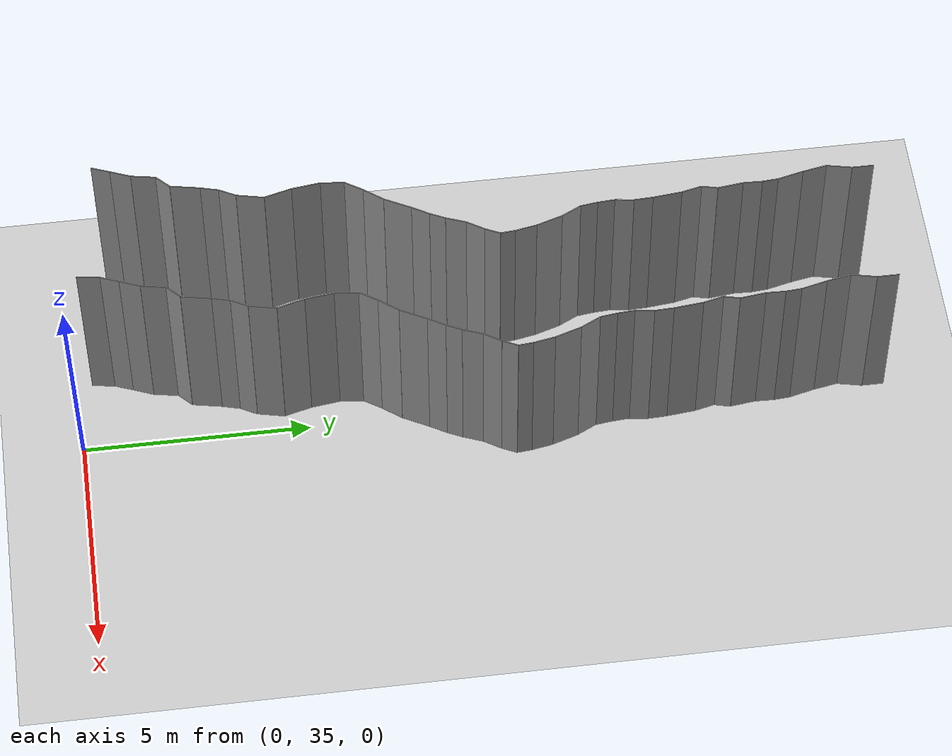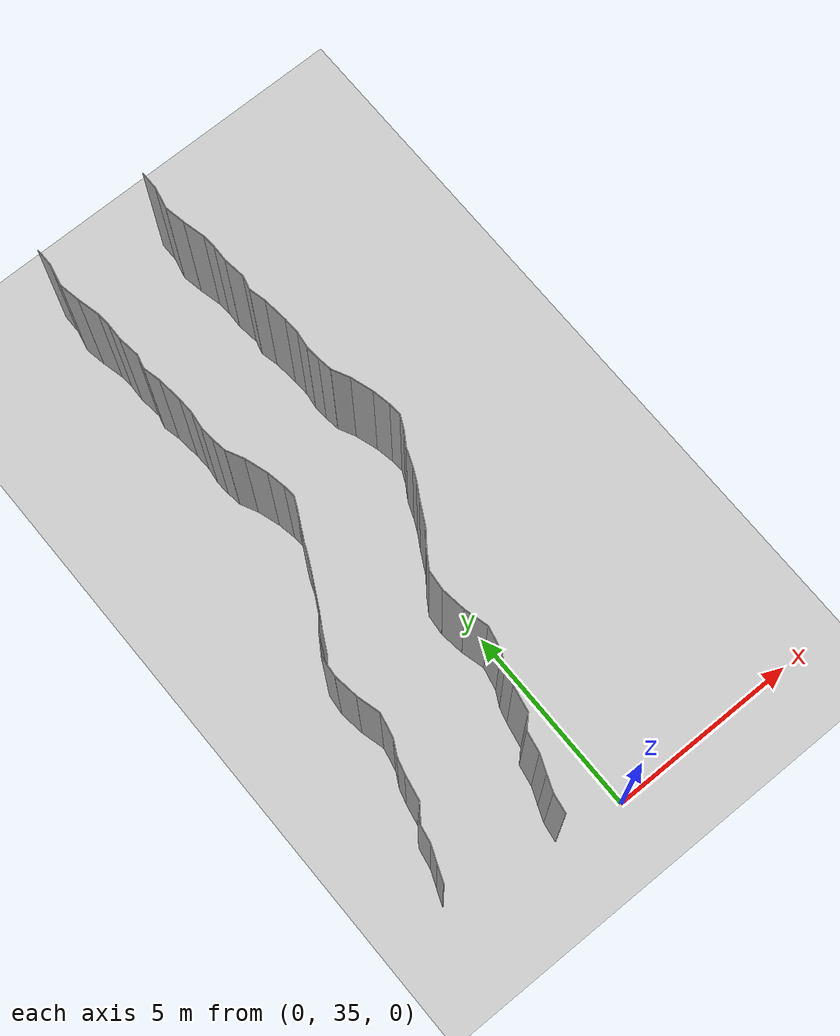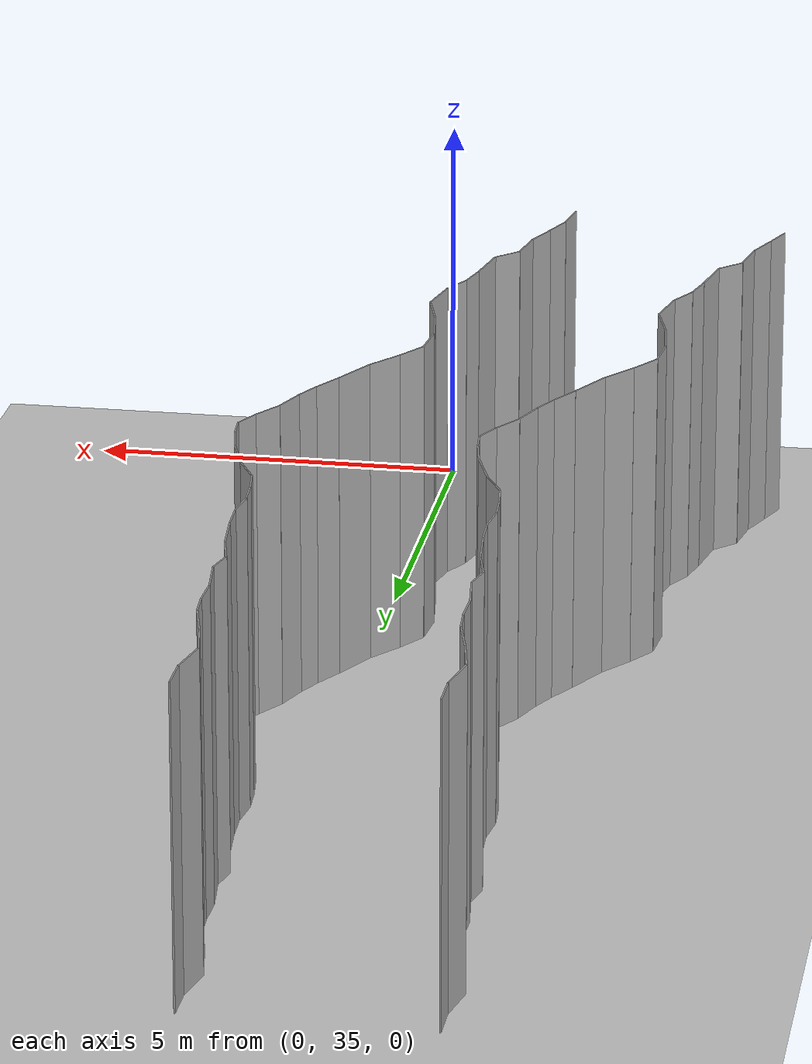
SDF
<sdf version="1.6">
 <world name="default">
  <model name="ground_plane">
   <static>1</static>
   <link name="link">
    <collision name="collision">
     <geometry><plane><normal>0 0 1</normal><size>200 200</size></plane></geometry>
     <surface><friction><ode><mu>100</mu><mu2>50</mu2></ode></friction></surface>
    </collision>
    <visual name="visual">
     <cast_shadows>0</cast_shadows>
     <geometry><plane><normal>0 0 1</normal><size>200 200</size></plane></geometry>
     <material>
      <script><uri>file://media/materials/scripts/gazebo.material</uri><name>Gazebo/Grey</name></script>
     </material>
    </visual>
   </link>
   <pose>0 100 0 0 -0 0</pose>
  </model>
  <model name="wall_149">
   <static>1</static>
   <pose>-1.6945637513108727 35.54319548367511 2 0 0 -0.1547474775584784</pose>
   <link name="link">
    <collision name="collision"><geometry><box><size>0.02 0.506544968688 4</size></box></geometry></collision>
    <visual name="visual">
     <material>
      <script><name>Gazebo/Grey</name><uri>file://media/materials/scripts/gazebo.material</uri></script>
     </material>
     <geometry><box><size>0.02 0.506544968688 4</size></box></geometry>
    </visual>
   </link>
  </model>
  <model name="wall_150">
   <static>1</static>
   <pose>-4.578984194579619 35.99189641002659 2 0 0 -0.3681115459540949</pose>
   <link name="link">
    <collision name="collision"><geometry><box><size>0.02 0.425408577381 4</size></box></geometry></collision>
    <visual name="visual">
     <material>
      <script><name>Gazebo/Grey</name><uri>file://media/materials/scripts/gazebo.material</uri></script>
     </material>
     <geometry><box><size>0.02 0.425408577381 4</size></box></geometry>
    </visual>
   </link>
  </model>
  <model name="wall_151">
   <static>1</static>
   <pose>-1.5789841945796192 35.99189641002659 2 0 0 -0.3681115459540949</pose>
   <link name="link">
    <collision name="collision"><geometry><box><size>0.02 0.425408577381 4</size></box></geometry></collision>
    <visual name="visual">
     <material>
      <script><name>Gazebo/Grey</name><uri>file://media/materials/scripts/gazebo.material</uri></script>
     </material>
     <geometry><box><size>0.02 0.425408577381 4</size></box></geometry>
    </visual>
   </link>
  </model>
  <model name="wall_152">
   <static>1</static>
   <pose>-4.413277643316515 36.41130849449302 2 0 0 -0.3835504109431815</pose>
   <link name="link">
    <collision name="collision"><geometry><box><size>0.02 0.476538733093 4</size></box></geometry></collision>
    <visual name="visual">
     <material>
      <script><name>Gazebo/Grey</name><uri>file://media/materials/scripts/gazebo.material</uri></script>
     </material>
     <geometry><box><size>0.02 0.476538733093 4</size></box></geometry>
    </visual>
   </link>
  </model>
  <model name="wall_153">
   <static>1</static>
   <pose>-1.4132776433165146 36.41130849449302 2 0 0 -0.3835504109431815</pose>
   <link name="link">
    <collision name="collision"><geometry><box><size>0.02 0.476538733093 4</size></box></geometry></collision>
    <visual name="visual">
     <material>
      <script><name>Gazebo/Grey</name><uri>file://media/materials/scripts/gazebo.material</uri></script>
     </material>
     <geometry><box><size>0.02 0.476538733093 4</size></box></geometry>
    </visual>
   </link>
  </model>
  <model name="wall_154">
   <static>1</static>
   <pose>-4.275203565568017 36.90156608929385 2 0 0 -0.17966056832239902</pose>
   <link name="link">
    <collision name="collision"><geometry><box><size>0.02 0.54741179084 4</size></box></geometry></collision>
    <visual name="visual">
     <material>
      <script><name>Gazebo/Grey</name><uri>file://media/materials/scripts/gazebo.material</uri></script>
     </material>
     <geometry><box><size>0.02 0.54741179084 4</size></box></geometry>
    </visual>
   </link>
  </model>
  <model name="wall_155">
   <static>1</static>
   <pose>-1.2752035655680167 36.90156608929385 2 0 0 -0.17966056832239902</pose>
   <link name="link">
    <collision name="collision"><geometry><box><size>0.02 0.54741179084 4</size></box></geometry></collision>
    <visual name="visual">
     <material>
      <script><name>Gazebo/Grey</name><uri>file://media/materials/scripts/gazebo.material</uri></script>
     </material>
     <geometry><box><size>0.02 0.54741179084 4</size></box></geometry>
    </visual>
   </link>
  </model>
  <model name="wall_156">
   <static>1</static>
   <pose>-4.082668118191047 37.314883230070045 2 0 0 -0.7840377903900512</pose>
   <link name="link">
    <collision name="collision"><geometry><box><size>0.02 0.406787747654 4</size></box></geometry></collision>
    <visual name="visual">
     <material>
      <script><name>Gazebo/Grey</name><uri>file://media/materials/scripts/gazebo.material</uri></script>
     </material>
     <geometry><box><size>0.02 0.406787747654 4</size></box></geometry>
    </visual>
   </link>
  </model>
  <model name="wall_157">
   <static>1</static>
   <pose>-1.0826681181910471 37.314883230070045 2 0 0 -0.7840377903900512</pose>
   <link name="link">
    <collision name="collision"><geometry><box><size>0.02 0.406787747654 4</size></box></geometry></collision>
    <visual name="visual">
     <material>
      <script><name>Gazebo/Grey</name><uri>file://media/materials/scripts/gazebo.material</uri></script>
     </material>
     <geometry><box><size>0.02 0.406787747654 4</size></box></geometry>
    </visual>
   </link>
  </model>
  <model name="wall_158">
   <static>1</static>
   <pose>-3.875762211153166 37.78329430338743 2 0 0 -0.192653366042095</pose>
   <link name="link">
    <collision name="collision"><geometry><box><size>0.02 0.661017786218 4</size></box></geometry></collision>
    <visual name="visual">
     <material>
      <script><name>Gazebo/Grey</name><uri>file://media/materials/scripts/gazebo.material</uri></script>
     </material>
     <geometry><box><size>0.02 0.661017786218 4</size></box></geometry>
    </visual>
   </link>
  </model>
  <model name="wall_159">
   <static>1</static>
   <pose>-0.875762211153166 37.78329430338743 2 0 0 -0.192653366042095</pose>
   <link name="link">
    <collision name="collision"><geometry><box><size>0.02 0.661017786218 4</size></box></geometry></collision>
    <visual name="visual">
     <material>
      <script><name>Gazebo/Grey</name><uri>file://media/materials/scripts/gazebo.material</uri></script>
     </material>
     <geometry><box><size>0.02 0.661017786218 4</size></box></geometry>
    </visual>
   </link>
  </model>
  <model name="wall_160">
   <static>1</static>
   <pose>-3.7597033736515764 38.30447899935427 2 0 0 -0.26202943850836335</pose>
   <link name="link">
    <collision name="collision"><geometry><box><size>0.02 0.407489806228 4</size></box></geometry></collision>
    <visual name="visual">
     <material>
      <script><name>Gazebo/Grey</name><uri>file://media/materials/scripts/gazebo.material</uri></script>
     </material>
     <geometry><box><size>0.02 0.407489806228 4</size></box></geometry>
    </visual>
   </link>
  </model>
  <model name="wall_161">
   <static>1</static>
   <pose>-0.7597033736515764 38.30447899935427 2 0 0 -0.26202943850836335</pose>
   <link name="link">
    <collision name="collision"><geometry><box><size>0.02 0.407489806228 4</size></box></geometry></collision>
    <visual name="visual">
     <material>
      <script><name>Gazebo/Grey</name><uri>file://media/materials/scripts/gazebo.material</uri></script>
     </material>
     <geometry><box><size>0.02 0.407489806228 4</size></box></geometry>
    </visual>
   </link>
  </model>
  <model name="wall_162">
   <static>1</static>
   <pose>-3.6107035388938953 38.68168069435206 2 0 0 -0.4899664070571512</pose>
   <link name="link">
    <collision name="collision"><geometry><box><size>0.02 0.408934413732 4</size></box></geometry></collision>
    <visual name="visual">
     <material>
      <script><name>Gazebo/Grey</name><uri>file://media/materials/scripts/gazebo.material</uri></script>
     </material>
     <geometry><box><size>0.02 0.408934413732 4</size></box></geometry>
    </visual>
   </link>
  </model>
  <model name="wall_163">
   <static>1</static>
   <pose>-0.6107035388938953 38.68168069435206 2 0 0 -0.4899664070571512</pose>
   <link name="link">
    <collision name="collision"><geometry><box><size>0.02 0.408934413732 4</size></box></geometry></collision>
    <visual name="visual">
     <material>
      <script><name>Gazebo/Grey</name><uri>file://media/materials/scripts/gazebo.material</uri></script>
     </material>
     <geometry><box><size>0.02 0.408934413732 4</size></box></geometry>
    </visual>
   </link>
  </model>
  <model name="wall_164">
   <static>1</static>
   <pose>-3.448454461525603 39.16227697958771 2 0 0 -0.21650866406489902</pose>
   <link name="link">
    <collision name="collision"><geometry><box><size>0.02 0.614721483957 4</size></box></geometry></collision>
    <visual name="visual">
     <material>
      <script><name>Gazebo/Grey</name><uri>file://media/materials/scripts/gazebo.material</uri></script>
     </material>
     <geometry><box><size>0.02 0.614721483957 4</size></box></geometry>
    </visual>
   </link>
  </model>
  <model name="wall_165">
   <static>1</static>
   <pose>-0.448454461525603 39.16227697958771 2 0 0 -0.21650866406489902</pose>
   <link name="link">
    <collision name="collision"><geometry><box><size>0.02 0.614721483957 4</size></box></geometry></collision>
    <visual name="visual">
     <material>
      <script><name>Gazebo/Grey</name><uri>file://media/materials/scripts/gazebo.material</uri></script>
     </material>
     <geometry><box><size>0.02 0.614721483957 4</size></box></geometry>
    </visual>
   </link>
  </model>
  <model name="wall_166">
   <static>1</static>
   <pose>-3.4628205682648545 39.76396403451567 2 0 0 0.2605810683939581</pose>
   <link name="link">
    <collision name="collision"><geometry><box><size>0.02 0.624072698254 4</size></box></geometry></collision>
    <visual name="visual">
     <material>
      <script><name>Gazebo/Grey</name><uri>file://media/materials/scripts/gazebo.material</uri></script>
     </material>
     <geometry><box><size>0.02 0.624072698254 4</size></box></geometry>
    </visual>
   </link>
  </model>
  <model name="wall_167">
   <static>1</static>
   <pose>-0.4628205682648545 39.76396403451567 2 0 0 0.2605810683939581</pose>
   <link name="link">
    <collision name="collision"><geometry><box><size>0.02 0.624072698254 4</size></box></geometry></collision>
    <visual name="visual">
     <material>
      <script><name>Gazebo/Grey</name><uri>file://media/materials/scripts/gazebo.material</uri></script>
     </material>
     <geometry><box><size>0.02 0.624072698254 4</size></box></geometry>
    </visual>
   </link>
  </model>
  <model name="wall_168">
   <static>1</static>
   <pose>-3.584592121349844 40.38347926001655 2 0 0 0.1293868430054792</pose>
   <link name="link">
    <collision name="collision"><geometry><box><size>0.02 0.641387409751 4</size></box></geometry></collision>
    <visual name="visual">
     <material>
      <script><name>Gazebo/Grey</name><uri>file://media/materials/scripts/gazebo.material</uri></script>
     </material>
     <geometry><box><size>0.02 0.641387409751 4</size></box></geometry>
    </visual>
   </link>
  </model>
  <model name="wall_169">
   <static>1</static>
   <pose>-0.5845921213498442 40.38347926001655 2 0 0 0.1293868430054792</pose>
   <link name="link">
    <collision name="collision"><geometry><box><size>0.02 0.641387409751 4</size></box></geometry></collision>
    <visual name="visual">
     <material>
      <script><name>Gazebo/Grey</name><uri>file://media/materials/scripts/gazebo.material</uri></script>
     </material>
     <geometry><box><size>0.02 0.641387409751 4</size></box></geometry>
    </visual>
   </link>
  </model>
  <model name="wall_170">
   <static>1</static>
   <pose>-3.6013539611579124 40.963259796237246 2 0 0 -0.09376204556615478</pose>
   <link name="link">
    <collision name="collision"><geometry><box><size>0.02 0.525844637675 4</size></box></geometry></collision>
    <visual name="visual">
     <material>
      <script><name>Gazebo/Grey</name><uri>file://media/materials/scripts/gazebo.material</uri></script>
     </material>
     <geometry><box><size>0.02 0.525844637675 4</size></box></geometry>
    </visual>
   </link>
  </model>
  <model name="wall_171">
   <static>1</static>
   <pose>-0.6013539611579124 40.963259796237246 2 0 0 -0.09376204556615478</pose>
   <link name="link">
    <collision name="collision"><geometry><box><size>0.02 0.525844637675 4</size></box></geometry></collision>
    <visual name="visual">
     <material>
      <script><name>Gazebo/Grey</name><uri>file://media/materials/scripts/gazebo.material</uri></script>
     </material>
     <geometry><box><size>0.02 0.525844637675 4</size></box></geometry>
    </visual>
   </link>
  </model>
  <model name="wall_172">
   <static>1</static>
   <pose>-3.4518130499084307 41.41842725017213 2 0 0 -0.5735160923914885</pose>
   <link name="link">
    <collision name="collision"><geometry><box><size>0.02 0.460477093339 4</size></box></geometry></collision>
    <visual name="visual">
     <material>
      <script><name>Gazebo/Grey</name><uri>file://media/materials/scripts/gazebo.material</uri></script>
     </material>
     <geometry><box><size>0.02 0.460477093339 4</size></box></geometry>
    </visual>
   </link>
  </model>
  <model name="wall_173">
   <static>1</static>
   <pose>-0.45181304990843074 41.41842725017213 2 0 0 -0.5735160923914885</pose>
   <link name="link">
    <collision name="collision"><geometry><box><size>0.02 0.460477093339 4</size></box></geometry></collision>
    <visual name="visual">
     <material>
      <script><name>Gazebo/Grey</name><uri>file://media/materials/scripts/gazebo.material</uri></script>
     </material>
     <geometry><box><size>0.02 0.460477093339 4</size></box></geometry>
    </visual>
   </link>
  </model>
  <model name="wall_174">
   <static>1</static>
   <pose>-3.170268894213148 41.819280168426864 2 0 0 -0.6466698722005015</pose>
   <link name="link">
    <collision name="collision"><geometry><box><size>0.02 0.519870398485 4</size></box></geometry></collision>
    <visual name="visual">
     <material>
      <script><name>Gazebo/Grey</name><uri>file://media/materials/scripts/gazebo.material</uri></script>
     </material>
     <geometry><box><size>0.02 0.519870398485 4</size></box></geometry>
    </visual>
   </link>
  </model>
  <model name="wall_175">
   <static>1</static>
   <pose>-0.17026889421314806 41.819280168426864 2 0 0 -0.6466698722005015</pose>
   <link name="link">
    <collision name="collision"><geometry><box><size>0.02 0.519870398485 4</size></box></geometry></collision>
    <visual name="visual">
     <material>
      <script><name>Gazebo/Grey</name><uri>file://media/materials/scripts/gazebo.material</uri></script>
     </material>
     <geometry><box><size>0.02 0.519870398485 4</size></box></geometry>
    </visual>
   </link>
  </model>
  <model name="wall_176">
   <static>1</static>
   <pose>-2.8629454306434265 42.311393381482354 2 0 0 -0.4869038346019665</pose>
   <link name="link">
    <collision name="collision"><geometry><box><size>0.02 0.644183947583 4</size></box></geometry></collision>
    <visual name="visual">
     <material>
      <script><name>Gazebo/Grey</name><uri>file://media/materials/scripts/gazebo.material</uri></script>
     </material>
     <geometry><box><size>0.02 0.644183947583 4</size></box></geometry>
    </visual>
   </link>
  </model>
  <model name="wall_177">
   <static>1</static>
   <pose>0.13705456935657345 42.311393381482354 2 0 0 -0.4869038346019665</pose>
   <link name="link">
    <collision name="collision"><geometry><box><size>0.02 0.644183947583 4</size></box></geometry></collision>
    <visual name="visual">
     <material>
      <script><name>Gazebo/Grey</name><uri>file://media/materials/scripts/gazebo.material</uri></script>
     </material>
     <geometry><box><size>0.02 0.644183947583 4</size></box></geometry>
    </visual>
   </link>
  </model>
  <model name="wall_178">
   <static>1</static>
   <pose>-2.60447843855468 42.780507211571546 2 0 0 -0.5287412507397901</pose>
   <link name="link">
    <collision name="collision"><geometry><box><size>0.02 0.427251336284 4</size></box></geometry></collision>
    <visual name="visual">
     <material>
      <script><name>Gazebo/Grey</name><uri>file://media/materials/scripts/gazebo.material</uri></script>
     </material>
     <geometry><box><size>0.02 0.427251336284 4</size></box></geometry>
    </visual>
   </link>
  </model>
  <model name="wall_179">
   <static>1</static>
   <pose>0.39552156144532 42.780507211571546 2 0 0 -0.5287412507397901</pose>
   <link name="link">
    <collision name="collision"><geometry><box><size>0.02 0.427251336284 4</size></box></geometry></collision>
    <visual name="visual">
     <material>
      <script><name>Gazebo/Grey</name><uri>file://media/materials/scripts/gazebo.material</uri></script>
     </material>
     <geometry><box><size>0.02 0.427251336284 4</size></box></geometry>
    </visual>
   </link>
  </model>
  <model name="wall_180">
   <static>1</static>
   <pose>-2.4172485987258283 43.12841000052841 2 0 0 -0.45253692548470675</pose>
   <link name="link">
    <collision name="collision"><geometry><box><size>0.02 0.363486838771 4</size></box></geometry></collision>
    <visual name="visual">
     <material>
      <script><name>Gazebo/Grey</name><uri>file://media/materials/scripts/gazebo.material</uri></script>
     </material>
     <geometry><box><size>0.02 0.363486838771 4</size></box></geometry>
    </visual>
   </link>
  </model>
  <model name="wall_181">
   <static>1</static>
   <pose>0.5827514012741717 43.12841000052841 2 0 0 -0.45253692548470675</pose>
   <link name="link">
    <collision name="collision"><geometry><box><size>0.02 0.363486838771 4</size></box></geometry></collision>
    <visual name="visual">
     <material>
      <script><name>Gazebo/Grey</name><uri>file://media/materials/scripts/gazebo.material</uri></script>
     </material>
     <geometry><box><size>0.02 0.363486838771 4</size></box></geometry>
    </visual>
   </link>
  </model>
  <model name="wall_182">
   <static>1</static>
   <pose>-2.255132440101794 43.50748154905827 2 0 0 -0.36603189239914036</pose>
   <link name="link">
    <collision name="collision"><geometry><box><size>0.02 0.461839143987 4</size></box></geometry></collision>
    <visual name="visual">
     <material>
      <script><name>Gazebo/Grey</name><uri>file://media/materials/scripts/gazebo.material</uri></script>
     </material>
     <geometry><box><size>0.02 0.461839143987 4</size></box></geometry>
    </visual>
   </link>
  </model>
  <model name="wall_183">
   <static>1</static>
   <pose>0.7448675598982062 43.50748154905827 2 0 0 -0.36603189239914036</pose>
   <link name="link">
    <collision name="collision"><geometry><box><size>0.02 0.461839143987 4</size></box></geometry></collision>
    <visual name="visual">
     <material>
      <script><name>Gazebo/Grey</name><uri>file://media/materials/scripts/gazebo.material</uri></script>
     </material>
     <geometry><box><size>0.02 0.461839143987 4</size></box></geometry>
    </visual>
   </link>
  </model>
  <model name="wall_184">
   <static>1</static>
   <pose>-2.05610437435888 43.90736170160479 2 0 0 -0.5633378199953764</pose>
   <link name="link">
    <collision name="collision"><geometry><box><size>0.02 0.435867039459 4</size></box></geometry></collision>
    <visual name="visual">
     <material>
      <script><name>Gazebo/Grey</name><uri>file://media/materials/scripts/gazebo.material</uri></script>
     </material>
     <geometry><box><size>0.02 0.435867039459 4</size></box></geometry>
    </visual>
   </link>
  </model>
  <model name="wall_185">
   <static>1</static>
   <pose>0.9438956256411202 43.90736170160479 2 0 0 -0.5633378199953764</pose>
   <link name="link">
    <collision name="collision"><geometry><box><size>0.02 0.435867039459 4</size></box></geometry></collision>
    <visual name="visual">
     <material>
      <script><name>Gazebo/Grey</name><uri>file://media/materials/scripts/gazebo.material</uri></script>
     </material>
     <geometry><box><size>0.02 0.435867039459 4</size></box></geometry>
    </visual>
   </link>
  </model>
  <model name="wall_186">
   <static>1</static>
   <pose>-1.8616082374699354 44.254362387608715 2 0 0 -0.4475231596914999</pose>
   <link name="link">
    <collision name="collision"><geometry><box><size>0.02 0.361040285781 4</size></box></geometry></collision>
    <visual name="visual">
     <material>
      <script><name>Gazebo/Grey</name><uri>file://media/materials/scripts/gazebo.material</uri></script>
     </material>
     <geometry><box><size>0.02 0.361040285781 4</size></box></geometry>
    </visual>
   </link>
  </model>
  <model name="wall_187">
   <static>1</static>
   <pose>1.1383917625300646 44.254362387608715 2 0 0 -0.4475231596914999</pose>
   <link name="link">
    <collision name="collision"><geometry><box><size>0.02 0.361040285781 4</size></box></geometry></collision>
    <visual name="visual">
     <material>
      <script><name>Gazebo/Grey</name><uri>file://media/materials/scripts/gazebo.material</uri></script>
     </material>
     <geometry><box><size>0.02 0.361040285781 4</size></box></geometry>
    </visual>
   </link>
  </model>
  <model name="wall_188">
   <static>1</static>
   <pose>-1.7974978121578913 44.57935193281368 2 0 0 0.08611653125790739</pose>
   <link name="link">
    <collision name="collision"><geometry><box><size>0.02 0.325700405832 4</size></box></geometry></collision>
    <visual name="visual">
     <material>
      <script><name>Gazebo/Grey</name><uri>file://media/materials/scripts/gazebo.material</uri></script>
     </material>
     <geometry><box><size>0.02 0.325700405832 4</size></box></geometry>
    </visual>
   </link>
  </model>
  <model name="wall_189">
   <static>1</static>
   <pose>1.2025021878421087 44.57935193281368 2 0 0 0.08611653125790739</pose>
   <link name="link">
    <collision name="collision"><geometry><box><size>0.02 0.325700405832 4</size></box></geometry></collision>
    <visual name="visual">
     <material>
      <script><name>Gazebo/Grey</name><uri>file://media/materials/scripts/gazebo.material</uri></script>
     </material>
     <geometry><box><size>0.02 0.325700405832 4</size></box></geometry>
    </visual>
   </link>
  </model>
  <model name="wall_190">
   <static>1</static>
   <pose>-1.8553960243873915 44.97926241137425 2 0 0 0.1826211285038555</pose>
   <link name="link">
    <collision name="collision"><geometry><box><size>0.02 0.483365368015 4</size></box></geometry></collision>
    <visual name="visual">
     <material>
      <script><name>Gazebo/Grey</name><uri>file://media/materials/scripts/gazebo.material</uri></script>
     </material>
     <geometry><box><size>0.02 0.483365368015 4</size></box></geometry>
    </visual>
   </link>
  </model>
  <model name="wall_191">
   <static>1</static>
   <pose>1.1446039756126085 44.97926241137425 2 0 0 0.1826211285038555</pose>
   <link name="link">
    <collision name="collision"><geometry><box><size>0.02 0.483365368015 4</size></box></geometry></collision>
    <visual name="visual">
     <material>
      <script><name>Gazebo/Grey</name><uri>file://media/materials/scripts/gazebo.material</uri></script>
     </material>
     <geometry><box><size>0.02 0.483365368015 4</size></box></geometry>
    </visual>
   </link>
  </model>
  <model name="wall_192">
   <static>1</static>
   <pose>-1.9920172994283925 45.50499848063043 2 0 0 0.3114234675145845</pose>
   <link name="link">
    <collision name="collision"><geometry><box><size>0.02 0.605258553574 4</size></box></geometry></collision>
    <visual name="visual">
     <material>
      <script><name>Gazebo/Grey</name><uri>file://media/materials/scripts/gazebo.material</uri></script>
     </material>
     <geometry><box><size>0.02 0.605258553574 4</size></box></geometry>
    </visual>
   </link>
  </model>
  <model name="wall_193">
   <static>1</static>
   <pose>1.0079827005716075 45.50499848063043 2 0 0 0.3114234675145845</pose>
   <link name="link">
    <collision name="collision"><geometry><box><size>0.02 0.605258553574 4</size></box></geometry></collision>
    <visual name="visual">
     <material>
      <script><name>Gazebo/Grey</name><uri>file://media/materials/scripts/gazebo.material</uri></script>
     </material>
     <geometry><box><size>0.02 0.605258553574 4</size></box></geometry>
    </visual>
   </link>
  </model>
  <model name="wall_194">
   <static>1</static>
   <pose>-2.193884688812576 46.010240942872706 2 0 0 0.4656807529011164</pose>
   <link name="link">
    <collision name="collision"><geometry><box><size>0.02 0.486102377637 4</size></box></geometry></collision>
    <visual name="visual">
     <material>
      <script><name>Gazebo/Grey</name><uri>file://media/materials/scripts/gazebo.material</uri></script>
     </material>
     <geometry><box><size>0.02 0.486102377637 4</size></box></geometry>
    </visual>
   </link>
  </model>
  <model name="wall_195">
   <static>1</static>
   <pose>0.806115311187424 46.010240942872706 2 0 0 0.4656807529011164</pose>
   <link name="link">
    <collision name="collision"><geometry><box><size>0.02 0.486102377637 4</size></box></geometry></collision>
    <visual name="visual">
     <material>
      <script><name>Gazebo/Grey</name><uri>file://media/materials/scripts/gazebo.material</uri></script>
     </material>
     <geometry><box><size>0.02 0.486102377637 4</size></box></geometry>
    </visual>
   </link>
  </model>
  <model name="wall_196">
   <static>1</static>
   <pose>-2.328562666346233 46.416205627134175 2 0 0 0.13446523167560034</pose>
   <link name="link">
    <collision name="collision"><geometry><box><size>0.02 0.38102855327 4</size></box></geometry></collision>
    <visual name="visual">
     <material>
      <script><name>Gazebo/Grey</name><uri>file://media/materials/scripts/gazebo.material</uri></script>
     </material>
     <geometry><box><size>0.02 0.38102855327 4</size></box></geometry>
    </visual>
   </link>
  </model>
  <model name="wall_197">
   <static>1</static>
   <pose>0.6714373336537669 46.416205627134175 2 0 0 0.13446523167560034</pose>
   <link name="link">
    <collision name="collision"><geometry><box><size>0.02 0.38102855327 4</size></box></geometry></collision>
    <visual name="visual">
     <material>
      <script><name>Gazebo/Grey</name><uri>file://media/materials/scripts/gazebo.material</uri></script>
     </material>
     <geometry><box><size>0.02 0.38102855327 4</size></box></geometry>
    </visual>
   </link>
  </model>
  <model name="wall_198">
   <static>1</static>
   <pose>-2.366589706511688 46.79405093158712 2 0 0 0.06595324644159482</pose>
   <link name="link">
    <collision name="collision"><geometry><box><size>0.02 0.378925369755 4</size></box></geometry></collision>
    <visual name="visual">
     <material>
      <script><name>Gazebo/Grey</name><uri>file://media/materials/scripts/gazebo.material</uri></script>
     </material>
     <geometry><box><size>0.02 0.378925369755 4</size></box></geometry>
    </visual>
   </link>
  </model>
  <model name="wall_199">
   <static>1</static>
   <pose>0.6334102934883119 46.79405093158712 2 0 0 0.06595324644159482</pose>
   <link name="link">
    <collision name="collision"><geometry><box><size>0.02 0.378925369755 4</size></box></geometry></collision>
    <visual name="visual">
     <material>
      <script><name>Gazebo/Grey</name><uri>file://media/materials/scripts/gazebo.material</uri></script>
     </material>
     <geometry><box><size>0.02 0.378925369755 4</size></box></geometry>
    </visual>
   </link>
  </model>
  <model name="wall_200">
   <static>1</static>
   <pose>-2.3521966053547594 47.1897414395891 2 0 0 -0.12935379743997452</pose>
   <link name="link">
    <collision name="collision"><geometry><box><size>0.02 0.416761328773 4</size></box></geometry></collision>
    <visual name="visual">
     <material>
      <script><name>Gazebo/Grey</name><uri>file://media/materials/scripts/gazebo.material</uri></script>
     </material>
     <geometry><box><size>0.02 0.416761328773 4</size></box></geometry>
    </visual>
   </link>
  </model>
  <model name="wall_201">
   <static>1</static>
   <pose>0.6478033946452406 47.1897414395891 2 0 0 -0.12935379743997452</pose>
   <link name="link">
    <collision name="collision"><geometry><box><size>0.02 0.416761328773 4</size></box></geometry></collision>
    <visual name="visual">
     <material>
      <script><name>Gazebo/Grey</name><uri>file://media/materials/scripts/gazebo.material</uri></script>
     </material>
     <geometry><box><size>0.02 0.416761328773 4</size></box></geometry>
    </visual>
   </link>
  </model>
  <model name="wall_202">
   <static>1</static>
   <pose>-2.333843755948487 47.60520924861299 2 0 0 0.04080935942686262</pose>
   <link name="link">
    <collision name="collision"><geometry><box><size>0.02 0.418004164446 4</size></box></geometry></collision>
    <visual name="visual">
     <material>
      <script><name>Gazebo/Grey</name><uri>file://media/materials/scripts/gazebo.material</uri></script>
     </material>
     <geometry><box><size>0.02 0.418004164446 4</size></box></geometry>
    </visual>
   </link>
  </model>
  <model name="wall_203">
   <static>1</static>
   <pose>0.6661562440515132 47.60520924861299 2 0 0 0.04080935942686262</pose>
   <link name="link">
    <collision name="collision"><geometry><box><size>0.02 0.418004164446 4</size></box></geometry></collision>
    <visual name="visual">
     <material>
      <script><name>Gazebo/Grey</name><uri>file://media/materials/scripts/gazebo.material</uri></script>
     </material>
     <geometry><box><size>0.02 0.418004164446 4</size></box></geometry>
    </visual>
   </link>
  </model>
  <model name="wall_204">
   <static>1</static>
   <pose>-2.37498642682249 48.13431209726268 2 0 0 0.10148705245286604</pose>
   <link name="link">
    <collision name="collision"><geometry><box><size>0.02 0.643862482496 4</size></box></geometry></collision>
    <visual name="visual">
     <material>
      <script><name>Gazebo/Grey</name><uri>file://media/materials/scripts/gazebo.material</uri></script>
     </material>
     <geometry><box><size>0.02 0.643862482496 4</size></box></geometry>
    </visual>
   </link>
  </model>
  <model name="wall_205">
   <static>1</static>
   <pose>0.6250135731775099 48.13431209726268 2 0 0 0.10148705245286604</pose>
   <link name="link">
    <collision name="collision"><geometry><box><size>0.02 0.643862482496 4</size></box></geometry></collision>
    <visual name="visual">
     <material>
      <script><name>Gazebo/Grey</name><uri>file://media/materials/scripts/gazebo.material</uri></script>
     </material>
     <geometry><box><size>0.02 0.643862482496 4</size></box></geometry>
    </visual>
   </link>
  </model>
  <model name="wall_206">
   <static>1</static>
   <pose>-2.459295811634701 48.67896169575741 2 0 0 0.22643822473848463</pose>
   <link name="link">
    <collision name="collision"><geometry><box><size>0.02 0.460505317117 4</size></box></geometry></collision>
    <visual name="visual">
     <material>
      <script><name>Gazebo/Grey</name><uri>file://media/materials/scripts/gazebo.material</uri></script>
     </material>
     <geometry><box><size>0.02 0.460505317117 4</size></box></geometry>
    </visual>
   </link>
  </model>
  <model name="wall_207">
   <static>1</static>
   <pose>0.5407041883652992 48.67896169575741 2 0 0 0.22643822473848463</pose>
   <link name="link">
    <collision name="collision"><geometry><box><size>0.02 0.460505317117 4</size></box></geometry></collision>
    <visual name="visual">
     <material>
      <script><name>Gazebo/Grey</name><uri>file://media/materials/scripts/gazebo.material</uri></script>
     </material>
     <geometry><box><size>0.02 0.460505317117 4</size></box></geometry>
    </visual>
   </link>
  </model>
  <model name="wall_208">
   <static>1</static>
   <pose>-2.468719422226764 49.075883574747174 2 0 0 -0.2402451173168683</pose>
   <link name="link">
    <collision name="collision"><geometry><box><size>0.02 0.355298401977 4</size></box></geometry></collision>
    <visual name="visual">
     <material>
      <script><name>Gazebo/Grey</name><uri>file://media/materials/scripts/gazebo.material</uri></script>
     </material>
     <geometry><box><size>0.02 0.355298401977 4</size></box></geometry>
    </visual>
   </link>
  </model>
  <model name="wall_209">
   <static>1</static>
   <pose>0.5312805777732361 49.075883574747174 2 0 0 -0.2402451173168683</pose>
   <link name="link">
    <collision name="collision"><geometry><box><size>0.02 0.355298401977 4</size></box></geometry></collision>
    <visual name="visual">
     <material>
      <script><name>Gazebo/Grey</name><uri>file://media/materials/scripts/gazebo.material</uri></script>
     </material>
     <geometry><box><size>0.02 0.355298401977 4</size></box></geometry>
    </visual>
   </link>
  </model>
  <model name="wall_210">
   <static>1</static>
   <pose>-2.46127130718336 49.532073307917116 2 0 0 0.12215540714473443</pose>
   <link name="link">
    <collision name="collision"><geometry><box><size>0.02 0.571544324019 4</size></box></geometry></collision>
    <visual name="visual">
     <material>
      <script><name>Gazebo/Grey</name><uri>file://media/materials/scripts/gazebo.material</uri></script>
     </material>
     <geometry><box><size>0.02 0.571544324019 4</size></box></geometry>
    </visual>
   </link>
  </model>
  <model name="wall_211">
   <static>1</static>
   <pose>0.5387286928166399 49.532073307917116 2 0 0 0.12215540714473443</pose>
   <link name="link">
    <collision name="collision"><geometry><box><size>0.02 0.571544324019 4</size></box></geometry></collision>
    <visual name="visual">
     <material>
      <script><name>Gazebo/Grey</name><uri>file://media/materials/scripts/gazebo.material</uri></script>
     </material>
     <geometry><box><size>0.02 0.571544324019 4</size></box></geometry>
    </visual>
   </link>
  </model>
  <model name="wall_212">
   <static>1</static>
   <pose>-2.489822934103553 50.02643482030274 2 0 0 -0.029747627779937783</pose>
   <link name="link">
    <collision name="collision"><geometry><box><size>0.02 0.421624215216 4</size></box></geometry></collision>
    <visual name="visual">
     <material>
      <script><name>Gazebo/Grey</name><uri>file://media/materials/scripts/gazebo.material</uri></script>
     </material>
     <geometry><box><size>0.02 0.421624215216 4</size></box></geometry>
    </visual>
   </link>
  </model>
  <model name="wall_213">
   <static>1</static>
   <pose>0.5101770658964471 50.02643482030274 2 0 0 -0.029747627779937783</pose>
   <link name="link">
    <collision name="collision"><geometry><box><size>0.02 0.421624215216 4</size></box></geometry></collision>
    <visual name="visual">
     <material>
      <script><name>Gazebo/Grey</name><uri>file://media/materials/scripts/gazebo.material</uri></script>
     </material>
     <geometry><box><size>0.02 0.421624215216 4</size></box></geometry>
    </visual>
   </link>
  </model>
  <model name="wall_214">
   <static>1</static>
   <pose>-2.49625645428593 50.41176002157181 2 0 0 0.07262857034359287</pose>
   <link name="link">
    <collision name="collision"><geometry><box><size>0.02 0.350135787087 4</size></box></geometry></collision>
    <visual name="visual">
     <material>
      <script><name>Gazebo/Grey</name><uri>file://media/materials/scripts/gazebo.material</uri></script>
     </material>
     <geometry><box><size>0.02 0.350135787087 4</size></box></geometry>
    </visual>
   </link>
  </model>
  <model name="wall_215">
   <static>1</static>
   <pose>0.50374354571407 50.41176002157181 2 0 0 0.07262857034359287</pose>
   <link name="link">
    <collision name="collision"><geometry><box><size>0.02 0.350135787087 4</size></box></geometry></collision>
    <visual name="visual">
     <material>
      <script><name>Gazebo/Grey</name><uri>file://media/materials/scripts/gazebo.material</uri></script>
     </material>
     <geometry><box><size>0.02 0.350135787087 4</size></box></geometry>
    </visual>
   </link>
  </model>
  <model name="wall_216">
   <static>1</static>
   <pose>-2.577629489719572 50.871158045441966 2 0 0 0.23660475708922696</pose>
   <link name="link">
    <collision name="collision"><geometry><box><size>0.02 0.585907024037 4</size></box></geometry></collision>
    <visual name="visual">
     <material>
      <script><name>Gazebo/Grey</name><uri>file://media/materials/scripts/gazebo.material</uri></script>
     </material>
     <geometry><box><size>0.02 0.585907024037 4</size></box></geometry>
    </visual>
   </link>
  </model>
  <model name="wall_217">
   <static>1</static>
   <pose>0.42237051028042805 50.871158045441966 2 0 0 0.23660475708922696</pose>
   <link name="link">
    <collision name="collision"><geometry><box><size>0.02 0.585907024037 4</size></box></geometry></collision>
    <visual name="visual">
     <material>
      <script><name>Gazebo/Grey</name><uri>file://media/materials/scripts/gazebo.material</uri></script>
     </material>
     <geometry><box><size>0.02 0.585907024037 4</size></box></geometry>
    </visual>
   </link>
  </model>
  <model name="wall_218">
   <static>1</static>
   <pose>-2.695469640145937 51.423940295428814 2 0 0 0.18146151335144847</pose>
   <link name="link">
    <collision name="collision"><geometry><box><size>0.02 0.544928363263 4</size></box></geometry></collision>
    <visual name="visual">
     <material>
      <script><name>Gazebo/Grey</name><uri>file://media/materials/scripts/gazebo.material</uri></script>
     </material>
     <geometry><box><size>0.02 0.544928363263 4</size></box></geometry>
    </visual>
   </link>
  </model>
  <model name="wall_219">
   <static>1</static>
   <pose>0.3045303598540632 51.423940295428814 2 0 0 0.18146151335144847</pose>
   <link name="link">
    <collision name="collision"><geometry><box><size>0.02 0.544928363263 4</size></box></geometry></collision>
    <visual name="visual">
     <material>
      <script><name>Gazebo/Grey</name><uri>file://media/materials/scripts/gazebo.material</uri></script>
     </material>
     <geometry><box><size>0.02 0.544928363263 4</size></box></geometry>
    </visual>
   </link>
  </model>
  <model name="wall_220">
   <static>1</static>
   <pose>-2.685186409511024 51.96485578981469 2 0 0 -0.21448957978437766</pose>
   <link name="link">
    <collision name="collision"><geometry><box><size>0.02 0.558651211862 4</size></box></geometry></collision>
    <visual name="visual">
     <material>
      <script><name>Gazebo/Grey</name><uri>file://media/materials/scripts/gazebo.material</uri></script>
     </material>
     <geometry><box><size>0.02 0.558651211862 4</size></box></geometry>
    </visual>
   </link>
  </model>
  <model name="wall_221">
   <static>1</static>
   <pose>0.31481359048897595 51.96485578981469 2 0 0 -0.21448957978437766</pose>
   <link name="link">
    <collision name="collision"><geometry><box><size>0.02 0.558651211862 4</size></box></geometry></collision>
    <visual name="visual">
     <material>
      <script><name>Gazebo/Grey</name><uri>file://media/materials/scripts/gazebo.material</uri></script>
     </material>
     <geometry><box><size>0.02 0.558651211862 4</size></box></geometry>
    </visual>
   </link>
  </model>
  <model name="wall_222">
   <static>1</static>
   <pose>-2.6250284268174093 52.47733666555692 2 0 0 -0.002938267918681453</pose>
   <link name="link">
    <collision name="collision"><geometry><box><size>0.02 0.479114008842 4</size></box></geometry></collision>
    <visual name="visual">
     <material>
      <script><name>Gazebo/Grey</name><uri>file://media/materials/scripts/gazebo.material</uri></script>
     </material>
     <geometry><box><size>0.02 0.479114008842 4</size></box></geometry>
    </visual>
   </link>
  </model>
  <model name="wall_223">
   <static>1</static>
   <pose>0.37497157318259067 52.47733666555692 2 0 0 -0.002938267918681453</pose>
   <link name="link">
    <collision name="collision"><geometry><box><size>0.02 0.479114008842 4</size></box></geometry></collision>
    <visual name="visual">
     <material>
      <script><name>Gazebo/Grey</name><uri>file://media/materials/scripts/gazebo.material</uri></script>
     </material>
     <geometry><box><size>0.02 0.479114008842 4</size></box></geometry>
    </visual>
   </link>
  </model>
 </world>
</sdf>
